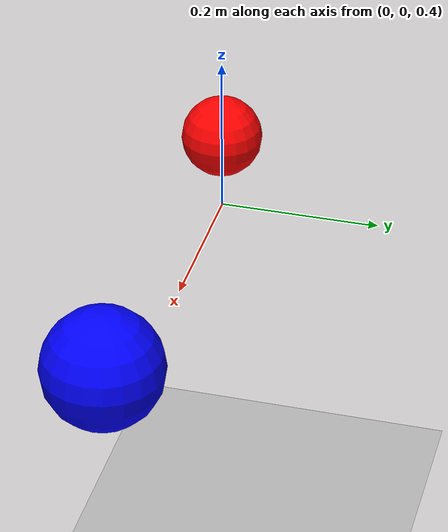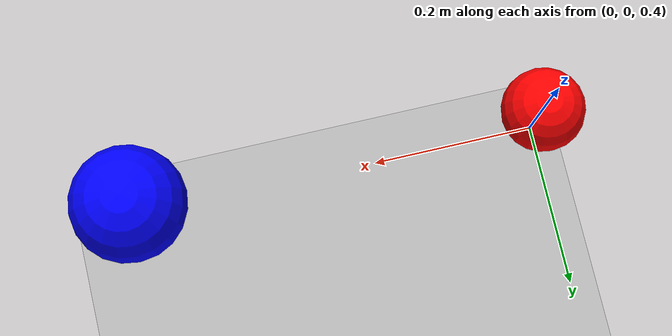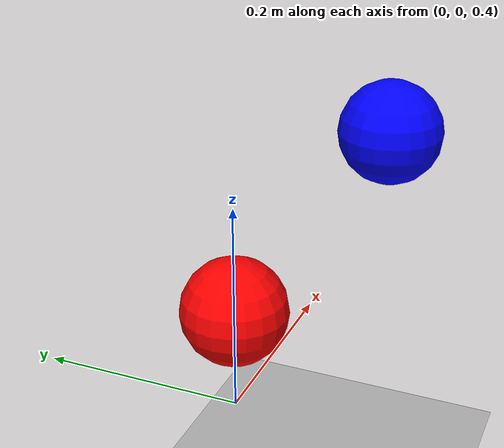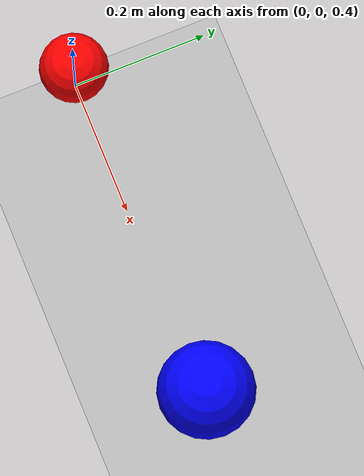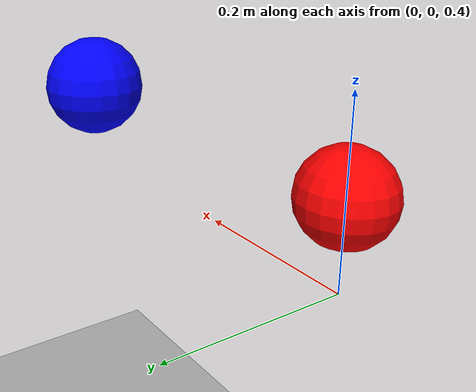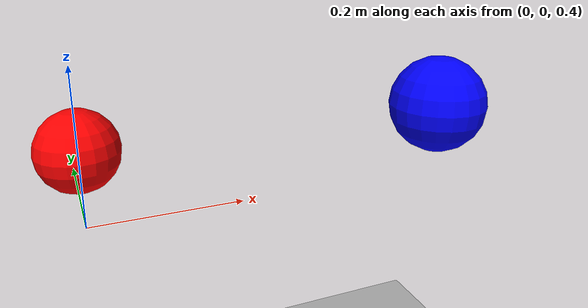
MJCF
<mujoco model="Esferas_y_Rampas">

    <compiler angle="degree" coordinate="local"/>
    <option timestep="0.01" gravity="0 0 -9.81" integrator="RK4"/>

    <!-- world -->
    <worldbody>

        <!-- rampa -->
        <body name="rampa" pos="0 0 0">

            <geom type="plane" size="2 1 0.1" rgba="0.7 0.7 0.7 1" frictiton="0.2"/>
            <joint type="free"/>

        </body>

        <!-- esferas -->
        <body name="esfera1" pos="0 0 0.5">

            <geom type="sphere" size="0.05" rgba="1 0 0 1" mass="0.1"/>
            <joint type="free"/>

        </body>

        <body name="esfera2" pos="0.5 0 0.5">

            <geom type="sphere" size="0.07" rgba="0 0 1 1" mass="0.15"/>
            <joint type="free"/>

        </body>
    </worldbody>

</mujoco>
